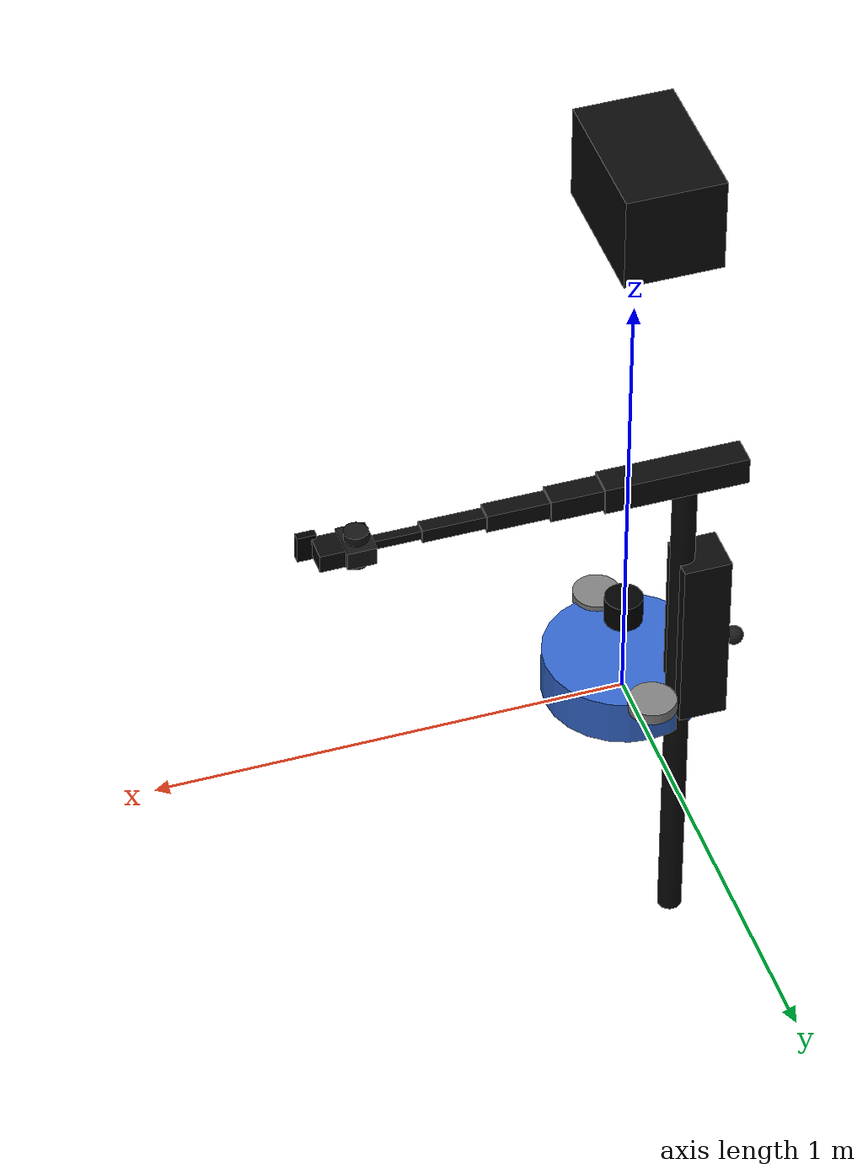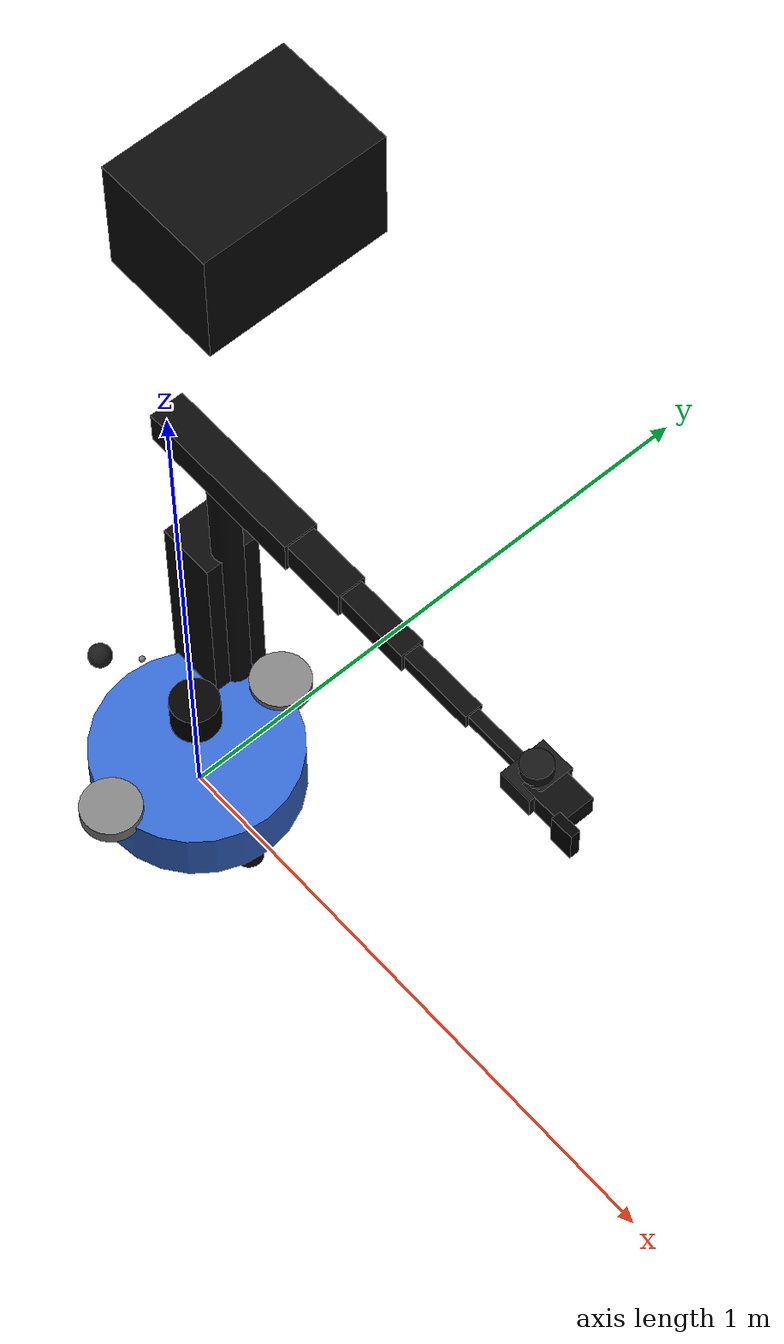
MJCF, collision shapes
<mujoco model="stretch_hybrid_simple">
  <!-- Hybrid model: Simplified cylindrical base + Original upper components -->
  <compiler angle="radian" assetdir="./stretch_mujoco/stretch_mujoco/models/assets"/>

  <!-- Optimized physics settings for better performance -->
  <option timestep="0.015" gravity="0 0 -9.81" iterations="25" solver="PGS" integrator="implicitfast" impratio="15">
    <flag multiccd="enable"/>
  </option>
  <size njmax="3000" nconmax="3000" />

  <default>
    <default class="stretch">
      <geom mass="0" solref="0.01 1"/>
      <general biastype="affine"/>
      <default class="wheel">
        <joint axis="0 0 1" damping="0.1" frictionloss="35" armature="0.1" stiffness="0.01"/>
        <velocity gear="3" kv="20" ctrlrange="-6 6"/>
      </default>
      <default class="lift">
        <joint type="slide" axis="0 0 1" damping="35" stiffness="0.03" armature="0.01" range="0.0 1.1" frictionloss="1.5"/>
        <general ctrlrange="0.0 1.1" gainprm="400" biasprm="0 -200 -100" forcerange="-70 70"/>
      </default>
      <default class="telescope">
        <joint type="slide" axis="0 0 1" damping="50" stiffness="0.02" armature="0.01" range="0 0.13" frictionloss="1.5"/>
        <general ctrlrange="0 0.52" gainprm="150" biasprm="0 -100 -10" forcerange="-56 56"/>
      </default>
      <default class="head">
        <joint axis="0 0 1" damping="1"/>
        <position kp="10"/>
        <default class="head_pan">
          <joint range="-4.04 1.73"/>
          <position ctrlrange="-4.04 1.73"/>
        </default>
        <default class="head_tilt">
          <joint range="-1.53 0.79"/>
          <position ctrlrange="-1.53 0.79"/>
        </default>
      </default>
      <default class="wrist">
        <joint axis="0 0 1" damping="1"/>
        <position kp="10"/>
        <default class="wrist_yaw">
          <joint axis="0 0 -1" range="-1.39 4.42" armature="0.01" damping="7" frictionloss=".1"/>
          <position ctrlrange="-1.39 4.42" kp="20"/>
        </default>
        <default class="wrist_pitch">
          <joint axis="0 0 1" range="-1.57 0.56" armature="0.01" frictionloss=".1"/>
          <position ctrlrange="-1.57 0.56" kp="50"/>
        </default>
        <default class="wrist_roll">
          <joint axis="0 0 1" range="-3.14 3.14" armature="0.01" frictionloss=".1"/>
          <position ctrlrange="-3.14 3.14" kp="20"/>
        </default>
        <default class="finger_open">
          <joint axis="0 -1 0" range="-0.6 0.6" damping="0.0001" armature="0.01" frictionloss=".1"/>
          <position ctrlrange="-0.6 0.6" kp="4000" kv="124"/>
        </default>
        <default class="finger_slide">
          <joint type="slide" axis="0 0 1" range="-0.02 .04" armature="0.1" damping="0.0001"/>
          <position ctrlrange="-0.02 .04" kp="4000" kv="124"/>
        </default>
      </default>
      <default class="visual">
        <geom group="2" type="mesh" contype="0" conaffinity="0"/>
      </default>
      <default class="collision">
        <geom group="3" type="mesh"/>
        <default class="caster">
          <geom type="sphere" size=".02" pos="-0.24 0 .02" condim="1" priority="1"/>
        </default>
        <default class="rubber">
          <geom condim="6" friction="2 0.02 0.1" priority="1" solref="0.02 1" solimp="0.99 0.99 0.01" conaffinity="1"/>
        </default>
      </default>
    </default>
  </default>

  <asset>
    <!-- Materials for simplified base -->
    <material name="base_blue" rgba="0.2 0.4 0.8 1"/>
    <material name="base_gray" rgba="0.5 0.5 0.5 1"/>
    <material name="wheel_black" rgba="0.1 0.1 0.1 1"/>

    <!-- Original robot materials (subset needed) -->
    <material name="Generic_Black" rgba="0.036889 0.036889 0.036889 1"/>
    <material name="3D_Print_Black" rgba="0.114435 0.114435 0.114435 1"/>
    <material name="Pantone_Black_6_U" rgba="0.072272 0.076185 0.093059 1"/>
    <material name="Pure_Black" rgba="0 0 0 1"/>
    <material name="Gray_Lens" rgba="0.3 0.3 0.3 1" reflectance="0.3"/>
    <material name="Servo_Blue" rgba="0.0823 0.4392 0.7137 1"/>
    <material name="Stepper_Black" rgba="0.0823 0.0823 0.0823 1"/>

    <!-- Original robot meshes for upper components -->
    <mesh name="link_mast" file="link_mast.obj"/>
    <mesh name="link_lift_0" file="link_lift_0.obj"/>
    <mesh name="link_lift_8" file="link_lift_8.obj"/>
    <mesh name="link_lift_9" file="link_lift_9.obj"/>

    <!-- Head meshes -->
    <mesh name="link_head_0" file="link_head_0.obj"/>
    <mesh name="link_head_1" file="link_head_1.obj"/>
    <mesh name="link_head_2" file="link_head_2.obj"/>
    <mesh name="link_head_3" file="link_head_3.obj"/>
    <mesh name="link_head_4" file="link_head_4.obj"/>
    <mesh name="link_head_5" file="link_head_5.obj"/>
    <mesh name="link_head_6" file="link_head_6.obj"/>
    <mesh name="link_head_7" file="link_head_7.obj"/>
    <mesh name="link_head_8" file="link_head_8.obj"/>
    <mesh name="link_head_9" file="link_head_9.obj"/>
    <mesh name="link_head_10" file="link_head_10.obj"/>
    <mesh name="link_head_11" file="link_head_11.obj"/>

    <!-- Arm meshes -->
    <mesh name="link_arm_l0_0" file="link_arm_l0_0.obj"/>
    <mesh name="link_arm_l0_1" file="link_arm_l0_1.obj"/>
    <mesh name="link_arm_l0_2" file="link_arm_l0_2.obj"/>
    <mesh name="link_arm_l1_0" file="link_arm_l1_0.obj"/>
    <mesh name="link_arm_l1_1" file="link_arm_l1_1.obj"/>
    <mesh name="link_arm_l2_0" file="link_arm_l2_0.obj"/>
    <mesh name="link_arm_l2_1" file="link_arm_l2_1.obj"/>
    <mesh name="link_arm_l3_0" file="link_arm_l3_0.obj"/>
    <mesh name="link_arm_l3_1" file="link_arm_l3_1.obj"/>
    <mesh name="link_arm_l4_0" file="link_arm_l4_0.obj"/>
    <mesh name="link_arm_l4_1" file="link_arm_l4_1.obj"/>

    <!-- Wrist and gripper meshes -->
    <mesh name="link_wrist_yaw" file="link_wrist_yaw.obj"/>
    <mesh name="link_DW3_wrist_pitch" file="link_DW3_wrist_pitch.stl"/>
    <mesh name="link_DW3_wrist_roll" file="link_DW3_wrist_roll.stl"/>
    <mesh name="link_SG3_gripper_body" file="link_SG3_gripper_body.obj"/>
    <mesh name="link_gripper_0" file="link_gripper_0.obj"/>
    <mesh name="link_gripper_1" file="link_gripper_1.obj"/>

    <!-- Wheel meshes -->
    <mesh name="link_left_wheel_0" file="link_left_wheel_0.obj"/>
    <mesh name="link_left_wheel_1" file="link_left_wheel_1.obj"/>
    <mesh name="link_right_wheel_0" file="link_right_wheel_0.obj"/>
    <mesh name="link_right_wheel_1" file="link_right_wheel_1.obj"/>

    <!-- LiDAR mesh -->
    <mesh name="laser" file="laser.obj"/>
  </asset>

  <worldbody>
    <light name="spotlight" mode="targetbodycom" target="base_link" pos="0 -1 2"/>

    <!-- SIMPLIFIED MOBILE BASE - Single cylinder replacing all base meshes -->
    <body name="base_link" pos="0 0 0.051">
      <!-- Simplified base visual - single blue cylinder -->
      <geom name="base_cylinder_visual" type="cylinder" size="0.17 0.051"
            material="base_blue" group="2" mass="0"/>

      <!-- Simplified base collision - cylinder with realistic mass -->
      <geom name="base_cylinder_collision" type="cylinder" size="0.17 0.051"
            material="base_gray" group="3" mass="25.0"/>

      <!-- Caster sphere (keep original) -->
      <geom name="caster" class="caster" material="wheel_black"/>

      <!-- Base joints for mobility -->
      <joint name="base_x" type="slide" axis="1 0 0" damping="10" range="-100 100"/>
      <joint name="base_y" type="slide" axis="0 1 0" damping="10" range="-100 100"/>
      <joint name="base_theta" type="hinge" axis="0 0 1" damping="5" range="-6.28 6.28"/>

      <!-- WHEELS (Keep original specifications and meshes) -->
      <body name="link_left_wheel" pos="0 0.17035 0.0508">
        <joint name="joint_left_wheel" class="wheel"/>
        <geom name="link_left_wheel_0_visual" class="visual" mesh="link_left_wheel_0" material="wheel_black"/>
        <geom name="link_left_wheel_1_visual" class="visual" mesh="link_left_wheel_1" material="Generic_Black"/>
        <geom name="link_left_wheel_collision" class="rubber" type="cylinder" size="0.05 0.0125" mass="0.15"/>
      </body>

      <body name="link_right_wheel" pos="0 -0.17035 0.0508">
        <joint name="joint_right_wheel" class="wheel"/>
        <geom name="link_right_wheel_0_visual" class="visual" mesh="link_right_wheel_0" material="wheel_black"/>
        <geom name="link_right_wheel_1_visual" class="visual" mesh="link_right_wheel_1" material="Generic_Black"/>
        <geom name="link_right_wheel_collision" class="rubber" type="cylinder" size="0.05 0.0125" mass="0.15"/>
      </body>

      <!-- LIDAR (Keep exact original position and specs) -->
      <body name="laser" pos="0.004 0 0.1664" quat="0 0 0 1">
        <geom name="laser_visual" class="visual" mesh="laser" material="Pure_Black"/>
        <geom name="laser_collision" type="cylinder" size="0.04 0.03" material="Pure_Black" group="3" mass="0.2"/>
        <site name="base_lidar" pos="0 0 0" size="0.01"/>
      </body>

      <!-- IMU (Keep exact original position) -->
      <site name="base_imu" pos="-0.12838 0.0031592 0.1474" euler="-3.1416 0 1.5708"/>

      <!-- MAST (Keep original - connects base to upper robot) -->
      <body name="link_mast" pos="-0.067 0.135 0.0284">
        <geom name="link_mast_visual" class="visual" mesh="link_mast" material="Generic_Black"/>
        <geom name="link_mast_collision" type="cylinder" size="0.025 0.6" material="Generic_Black" group="3" mass="1.8285"/>

        <!-- LIFT SYSTEM (Keep all original components) -->
        <body name="link_lift" pos="-0.037385 -0.000001 0.17159">
          <joint name="joint_lift" class="lift"/>
          <geom name="link_lift_0_visual" class="visual" mesh="link_lift_0" material="Generic_Black"/>
          <geom name="link_lift_8_visual" class="visual" mesh="link_lift_8" material="Stepper_Black"/>
          <geom name="link_lift_9_visual" class="visual" mesh="link_lift_9" material="Generic_Black"/>
          <geom name="link_lift_collision" type="box" size="0.05 0.05 0.2" material="Generic_Black" group="3" mass="3.0"/>

          <!-- HEAD ASSEMBLY (Keep all original components) -->
          <body name="link_head_pan" pos="0.13395 -0.000005 1.1568">
            <joint name="joint_head_pan" class="head_pan"/>
            <geom name="head_pan_collision" type="cylinder" size="0.03 0.02" material="Generic_Black" group="3" mass="0.2"/>

            <body name="link_head_tilt" pos="0 0 0">
              <joint name="joint_head_tilt" class="head_tilt"/>
              <geom name="head_tilt_collision" type="box" size="0.05 0.05 0.02" material="Generic_Black" group="3" mass="0.15"/>

              <!-- Head visual components (keep original) -->
              <geom name="link_head_0_visual" class="visual" mesh="link_head_0" material="Generic_Black"/>
              <geom name="link_head_1_visual" class="visual" mesh="link_head_1" material="3D_Print_Black"/>
              <geom name="link_head_2_visual" class="visual" mesh="link_head_2" material="Pantone_Black_6_U"/>
              <geom name="link_head_3_visual" class="visual" mesh="link_head_3" material="3D_Print_Black"/>
              <geom name="link_head_4_visual" class="visual" mesh="link_head_4" material="Generic_Black"/>
              <geom name="link_head_5_visual" class="visual" mesh="link_head_5" material="Pure_Black"/>
              <geom name="link_head_6_visual" class="visual" mesh="link_head_6" material="Gray_Lens"/>
              <geom name="link_head_7_visual" class="visual" mesh="link_head_7" material="Pure_Black"/>
              <geom name="link_head_8_visual" class="visual" mesh="link_head_8" material="Generic_Black"/>
              <geom name="link_head_9_visual" class="visual" mesh="link_head_9" material="Pure_Black"/>
              <geom name="link_head_10_visual" class="visual" mesh="link_head_10" material="Generic_Black"/>
              <geom name="link_head_11_visual" class="visual" mesh="link_head_11" material="3D_Print_Black"/>

              <!-- Head collision -->
              <geom name="link_head_collision" type="box" size="0.1 0.15 0.1" material="Generic_Black" group="3" mass="0.833027"/>

              <!-- D435i Camera Assembly (Keep exact original position) -->
              <body name="realsense" pos="0.0406 0.0053 0.0307" euler="0 0 0">
                <geom name="d435i_housing" type="box" size="0.012 0.045 0.01" material="Pure_Black" group="2" mass="0"/>
                <camera name="d435i_camera_rgb" pos="0 0.015 0" euler="1.57 -1.57 0" fovy="42"/>
                <camera name="d435i_camera_depth" pos="0 0.015 0" euler="1.57 -1.57 0" fovy="42"/>
              </body>

              <!-- Navigation Camera (Keep exact original position) -->
              <body name="link_SE3_head_nav_cam" pos="0.04 -0.0412 -0.0246" euler="0 1.5707963 0">
                <body name="head_nav_cam" pos="0 0 0">
                  <geom name="nav_cam_housing" type="box" size="0.01 0.03 0.008" material="Pure_Black" group="2" mass="0"/>
                  <camera name="nav_camera_rgb" pos="0 0 0" euler="-3.1415926 0 -1.5707963" fovy="69"/>
                </body>
              </body>
            </body>
          </body>

          <!-- ARM SYSTEM (Keep all original telescoping components) -->
          <body name="link_arm_l4" pos="0.06478 0.000003 0.41821" gravcomp="1">
            <joint name="joint_arm_l4" class="telescope"/>
            <geom name="link_arm_l4_0_visual" class="visual" mesh="link_arm_l4_0" material="Generic_Black"/>
            <geom name="link_arm_l4_1_visual" class="visual" mesh="link_arm_l4_1" material="Servo_Blue"/>
            <geom name="link_arm_l4_collision" type="box" size="0.15 0.03 0.03" material="Generic_Black" group="3" mass="0.2"/>

            <body name="link_arm_l3" pos="0.13 0 0" gravcomp="1">
              <joint name="joint_arm_l3" class="telescope"/>
              <geom name="link_arm_l3_0_visual" class="visual" mesh="link_arm_l3_0" material="Generic_Black"/>
              <geom name="link_arm_l3_1_visual" class="visual" mesh="link_arm_l3_1" material="Servo_Blue"/>
              <geom name="link_arm_l3_collision" type="box" size="0.13 0.025 0.025" material="Generic_Black" group="3" mass="0.18"/>

              <body name="link_arm_l2" pos="0.13 0 0" gravcomp="1">
                <joint name="joint_arm_l2" class="telescope"/>
                <geom name="link_arm_l2_0_visual" class="visual" mesh="link_arm_l2_0" material="Generic_Black"/>
                <geom name="link_arm_l2_1_visual" class="visual" mesh="link_arm_l2_1" material="Servo_Blue"/>
                <geom name="link_arm_l2_collision" type="box" size="0.13 0.02 0.02" material="Generic_Black" group="3" mass="0.16"/>

                <body name="link_arm_l1" pos="0.13 0 0" gravcomp="1">
                  <joint name="joint_arm_l1" class="telescope"/>
                  <geom name="link_arm_l1_0_visual" class="visual" mesh="link_arm_l1_0" material="Generic_Black"/>
                  <geom name="link_arm_l1_1_visual" class="visual" mesh="link_arm_l1_1" material="Servo_Blue"/>
                  <geom name="link_arm_l1_collision" type="box" size="0.13 0.015 0.015" material="Generic_Black" group="3" mass="0.15"/>

                  <body name="link_arm_l0" pos="0.13 0 0" gravcomp="1">
                    <joint name="joint_arm_l0" class="telescope"/>
                    <geom name="link_arm_l0_0_visual" class="visual" mesh="link_arm_l0_0" material="Generic_Black"/>
                    <geom name="link_arm_l0_1_visual" class="visual" mesh="link_arm_l0_1" material="Servo_Blue"/>
                    <geom name="link_arm_l0_2_visual" class="visual" mesh="link_arm_l0_2" material="3D_Print_Black"/>
                    <geom name="link_arm_l0_collision" type="box" size="0.13 0.01 0.01" material="Generic_Black" group="3" mass="0.3"/>

                    <!-- WRIST ASSEMBLY (Keep all original 3-DOF wrist) -->
                    <body name="link_wrist_yaw" pos="0.13 0 0">
                      <joint name="joint_wrist_yaw" class="wrist_yaw"/>
                      <geom name="link_wrist_yaw_visual" class="visual" mesh="link_wrist_yaw" material="Stepper_Black"/>
                      <geom name="link_wrist_yaw_collision" type="cylinder" size="0.025 0.04" material="Stepper_Black" group="3" mass="0.3"/>

                      <body name="link_DW3_wrist_pitch" pos="0 0 0">
                        <joint name="joint_wrist_pitch" class="wrist_pitch"/>
                        <geom name="link_DW3_wrist_pitch_visual" class="visual" mesh="link_DW3_wrist_pitch" material="Generic_Black"/>
                        <geom name="link_DW3_wrist_pitch_collision" type="box" size="0.03 0.04 0.02" material="Stepper_Black" group="3" mass="0.2"/>

                        <body name="link_wrist_roll" pos="0 0 0">
                          <joint name="joint_wrist_roll" class="wrist_roll"/>
                          <geom name="link_DW3_wrist_roll_visual" class="visual" mesh="link_DW3_wrist_roll" material="Stepper_Black"/>
                          <geom name="link_wrist_roll_collision" type="cylinder" size="0.015 0.03" material="Stepper_Black" group="3" mass="0.1"/>

                          <!-- GRIPPER ASSEMBLY (Keep original with D405 camera) -->
                          <body name="link_SG3_gripper_body" pos="0.043 0 0">
                            <joint name="joint_gripper_slide" class="finger_slide"/>
                            <geom name="link_SG3_gripper_body_visual" class="visual" mesh="link_SG3_gripper_body" material="Generic_Black"/>
                            <geom name="link_gripper_0_visual" class="visual" mesh="link_gripper_0" material="3D_Print_Black"/>
                            <geom name="link_gripper_1_visual" class="visual" mesh="link_gripper_1" material="Generic_Black"/>
                            <geom name="link_SG3_gripper_body_collision" type="box" size="0.04 0.03 0.02" material="Generic_Black" group="3" mass="0.2"/>

                            <!-- D405 Hand Camera (Keep exact original position) -->
                            <body name="aruco_d405" pos="0.05 0 0">
                              <body name="d405" pos="0 -0.03068 0" euler="1.57 0 0">
                                <body name="d405_cam" pos="0 0 0" euler="0 0 3.14">
                                  <geom name="d405_housing" type="box" size="0.02 0.03 0.008" material="Pure_Black" group="2" mass="0"/>
                                  <camera name="d405_rgb" pos="0 0 0" euler="-3.14 0 -3.14" fovy="58"/>
                                  <camera name="d405_depth" pos="0 0 0" euler="-3.14 0 -3.14" fovy="58"/>
                                </body>
                              </body>
                            </body>
                          </body>
                        </body>
                      </body>
                    </body>
                  </body>
                </body>
              </body>
            </body>
          </body>
        </body>
      </body>
    </body>
  </worldbody>

  <!-- SENSORS (Keep all original sensor definitions) -->
  <sensor>
    <!-- IMU Sensors -->
    <gyro name="base_gyro" site="base_imu"/>
    <accelerometer name="base_accel" site="base_imu"/>

    <!-- LIDAR Sensor -->
    <rangefinder name="base_lidar" site="base_lidar" cutoff="10.0"/>
  </sensor>

  <!-- ACTUATORS (Keep all original actuators) -->
  <actuator>
    <!-- Wheel actuators -->
    <velocity name="left_wheel" joint="joint_left_wheel" class="wheel"/>
    <velocity name="right_wheel" joint="joint_right_wheel" class="wheel"/>

    <!-- Lift actuator -->
    <general name="lift" joint="joint_lift" class="lift"/>

    <!-- Arm actuators -->
    <general name="arm_l4" joint="joint_arm_l4" class="telescope"/>
    <general name="arm_l3" joint="joint_arm_l3" class="telescope"/>
    <general name="arm_l2" joint="joint_arm_l2" class="telescope"/>
    <general name="arm_l1" joint="joint_arm_l1" class="telescope"/>
    <general name="arm_l0" joint="joint_arm_l0" class="telescope"/>

    <!-- Head actuators -->
    <position name="head_pan" joint="joint_head_pan" class="head_pan"/>
    <position name="head_tilt" joint="joint_head_tilt" class="head_tilt"/>

    <!-- Wrist actuators -->
    <position name="wrist_yaw" joint="joint_wrist_yaw" class="wrist_yaw"/>
    <position name="wrist_pitch" joint="joint_wrist_pitch" class="wrist_pitch"/>
    <position name="wrist_roll" joint="joint_wrist_roll" class="wrist_roll"/>

    <!-- Gripper actuator -->
    <position name="gripper" joint="joint_gripper_slide" class="finger_slide"/>
  </actuator>

</mujoco>
